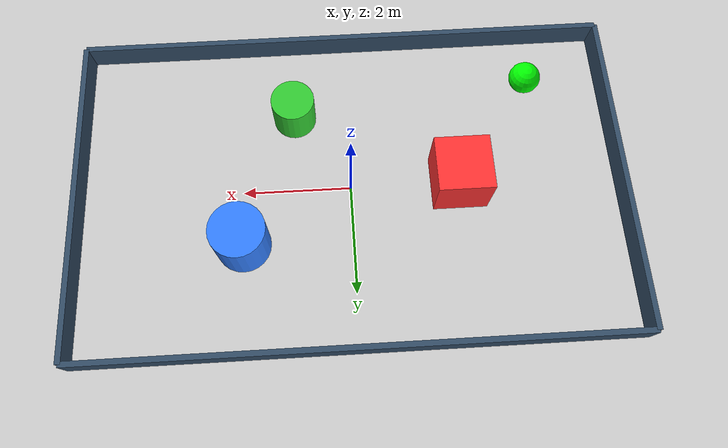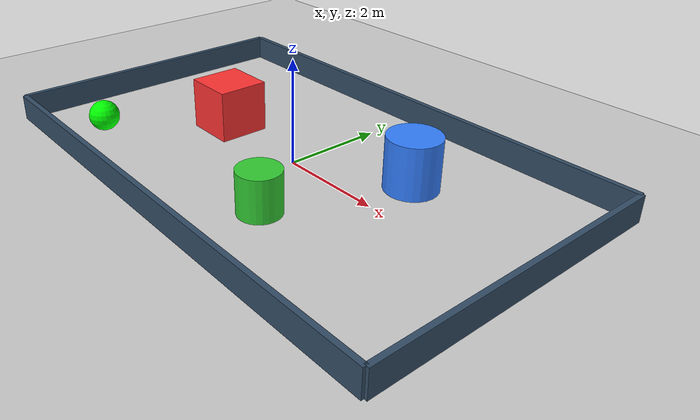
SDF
<?xml version="1.0" ?>
<sdf version="1.6">
  <world name="enclosed_arena">
    <!-- 场景设置 -->
    <scene>
      <ambient>0.4 0.4 0.4 1</ambient>
      <background>0.7 0.7 0.7 1</background>
      <shadows>true</shadows>
    </scene>

    <!-- 地面 -->
    <model name="ground_plane">
      <static>true</static>
      <link name="link">
        <collision name="collision">
          <geometry>
            <plane>
              <normal>0 0 1</normal>
              <size>100 100</size>
            </plane>
          </geometry>
        </collision>
        <visual name="visual">
          <geometry>
            <plane>
              <normal>0 0 1</normal>
              <size>100 100</size>
            </plane>
          </geometry>
          <material>
            <ambient>0.8 0.8 0.8 1</ambient>
            <diffuse>0.8 0.8 0.8 1</diffuse>
          </material>
        </visual>
      </link>
    </model>

    <!-- ==================== 围栏系统 ==================== -->
    <!-- 围栏参数: 长10米, 宽6米, 高0.5米 -->

    <!-- 前围栏 -->
    <model name="fence_front">
      <static>true</static>
      <pose>0 -3 0.25 0 0 0</pose>
      <link name="link">
        <collision name="collision">
          <geometry>
            <box>
              <size>10 0.1 0.5</size>
            </box>
          </geometry>
        </collision>
        <visual name="visual">
          <geometry>
            <box>
              <size>10 0.1 0.5</size>
            </box>
          </geometry>
          <material>
            <ambient>0.2 0.3 0.4 1</ambient>
            <diffuse>0.2 0.3 0.4 1</diffuse>
          </material>
        </visual>
      </link>
    </model>

    <!-- 后围栏 -->
    <model name="fence_back">
      <static>true</static>
      <pose>0 3 0.25 0 0 0</pose>
      <link name="link">
        <collision name="collision">
          <geometry>
            <box>
              <size>10 0.1 0.5</size>
            </box>
          </geometry>
        </collision>
        <visual name="visual">
          <geometry>
            <box>
              <size>10 0.1 0.5</size>
            </box>
          </geometry>
          <material>
            <ambient>0.2 0.3 0.4 1</ambient>
            <diffuse>0.2 0.3 0.4 1</diffuse>
          </material>
        </visual>
      </link>
    </model>

    <!-- 左围栏 -->
    <model name="fence_left">
      <static>true</static>
      <pose>-5 0 0.25 0 0 0</pose>
      <link name="link">
        <collision name="collision">
          <geometry>
            <box>
              <size>0.1 6 0.5</size>
            </box>
          </geometry>
        </collision>
        <visual name="visual">
          <geometry>
            <box>
              <size>0.1 6 0.5</size>
            </box>
          </geometry>
          <material>
            <ambient>0.2 0.3 0.4 1</ambient>
            <diffuse>0.2 0.3 0.4 1</diffuse>
          </material>
        </visual>
      </link>
    </model>

    <!-- 右围栏 -->
    <model name="fence_right">
      <static>true</static>
      <pose>5 0 0.25 0 0 0</pose>
      <link name="link">
        <collision name="collision">
          <geometry>
            <box>
              <size>0.1 6 0.5</size>
            </box>
          </geometry>
        </collision>
        <visual name="visual">
          <geometry>
            <box>
              <size>0.1 6 0.5</size>
            </box>
          </geometry>
          <material>
            <ambient>0.2 0.3 0.4 1</ambient>
            <diffuse>0.2 0.3 0.4 1</diffuse>
          </material>
        </visual>
      </link>
    </model>

    <!-- ==================== 障碍物 ==================== -->

    <!-- 方块障碍物 (红色) -->
    <model name="box_obstacle">
      <static>true</static>
      <pose>-2 0 0.5 0 0 0</pose>
      <link name="link">
        <collision name="collision">
          <geometry>
            <box>
              <size>1 1 1</size>
            </box>
          </geometry>
        </collision>
        <visual name="visual">
          <geometry>
            <box>
              <size>1 1 1</size>
            </box>
          </geometry>
          <material>
            <ambient>1 0.2 0.2 1</ambient>
            <diffuse>1 0.2 0.2 1</diffuse>
          </material>
        </visual>
      </link>
    </model>

    <!-- 圆柱障碍物 (蓝色) -->
    <model name="cylinder_obstacle">
      <static>true</static>
      <pose>2 1 0.5 0 0 0</pose>
      <link name="link">
        <collision name="collision">
          <geometry>
            <cylinder>
              <radius>0.5</radius>
              <length>1</length>
            </cylinder>
          </geometry>
        </collision>
        <visual name="visual">
          <geometry>
            <cylinder>
              <radius>0.5</radius>
              <length>1</length>
            </cylinder>
          </geometry>
          <material>
            <ambient>0.2 0.5 1 1</ambient>
            <diffuse>0.2 0.5 1 1</diffuse>
          </material>
        </visual>
      </link>
    </model>

    <!-- 额外的圆柱障碍物 (绿色, 可选) -->
    <model name="cylinder_obstacle_2">
      <static>true</static>
      <pose>1 -1.5 0.4 0 0 0</pose>
      <link name="link">
        <collision name="collision">
          <geometry>
            <cylinder>
              <radius>0.4</radius>
              <length>0.8</length>
            </cylinder>
          </geometry>
        </collision>
        <visual name="visual">
          <geometry>
            <cylinder>
              <radius>0.4</radius>
              <length>0.8</length>
            </cylinder>
          </geometry>
          <material>
            <ambient>0.2 0.8 0.2 1</ambient>
            <diffuse>0.2 0.8 0.2 1</diffuse>
          </material>
        </visual>
      </link>
    </model>

    <!-- 动态障碍物 -->
    <model name="dynamic_obstacle_model">
      <pose>-3.5 -2 0.3 0 0 0</pose>
      <link name="link">
        <inertial>
          <mass>1.0</mass>
          <inertia>
            <ixx>0.1</ixx><ixy>0</ixy><ixz>0</ixz>
            <iyy>0.1</iyy><iyz>0</iyz><izz>0.1</izz>
          </inertia>
        </inertial>
        <collision name="collision">
          <geometry><sphere><radius>0.3</radius></sphere></geometry>
        </collision>
        <visual name="visual">
          <geometry><sphere><radius>0.3</radius></sphere></geometry>
          <material><ambient>0 1 0 1</ambient><diffuse>0 1 0 1</diffuse></material>
        </visual>
      </link>

      <plugin name="linear_move" filename="libgazebo_ros_planar_move.so">
        <ros>
          <namespace>/obstacle</namespace>
        </ros>
        <command_topic>cmd_vel</command_topic>
        <odometry_topic>odom</odometry_topic>
        <odometry_frame>odom</odometry_frame>
        <robot_base_frame>link</robot_base_frame>
      </plugin>
    </model>

    <!-- ==================== 光照 ==================== -->
    <include>
      <uri>model://sun</uri>
    </include>

    <!-- ==================== GUI设置 ==================== -->
    <gui>
      <camera name="user_camera">
        <projection_type>perspective</projection_type>
        <pose>0 -8 6 0 0.6 1.57</pose>
        <!-- 初始视角: x=0, y=-8, z=6, 俯仰角0.6rad, 朝向1.57rad(90度) -->
      </camera>
    </gui>

    <!-- ==================== 物理引擎 ==================== -->
    <physics type="ode">
      <real_time_update_rate>1000.0</real_time_update_rate>
      <max_step_size>0.001</max_step_size>
      <gravity>0 0 -9.8</gravity>
    </physics>

  </world>
</sdf>
